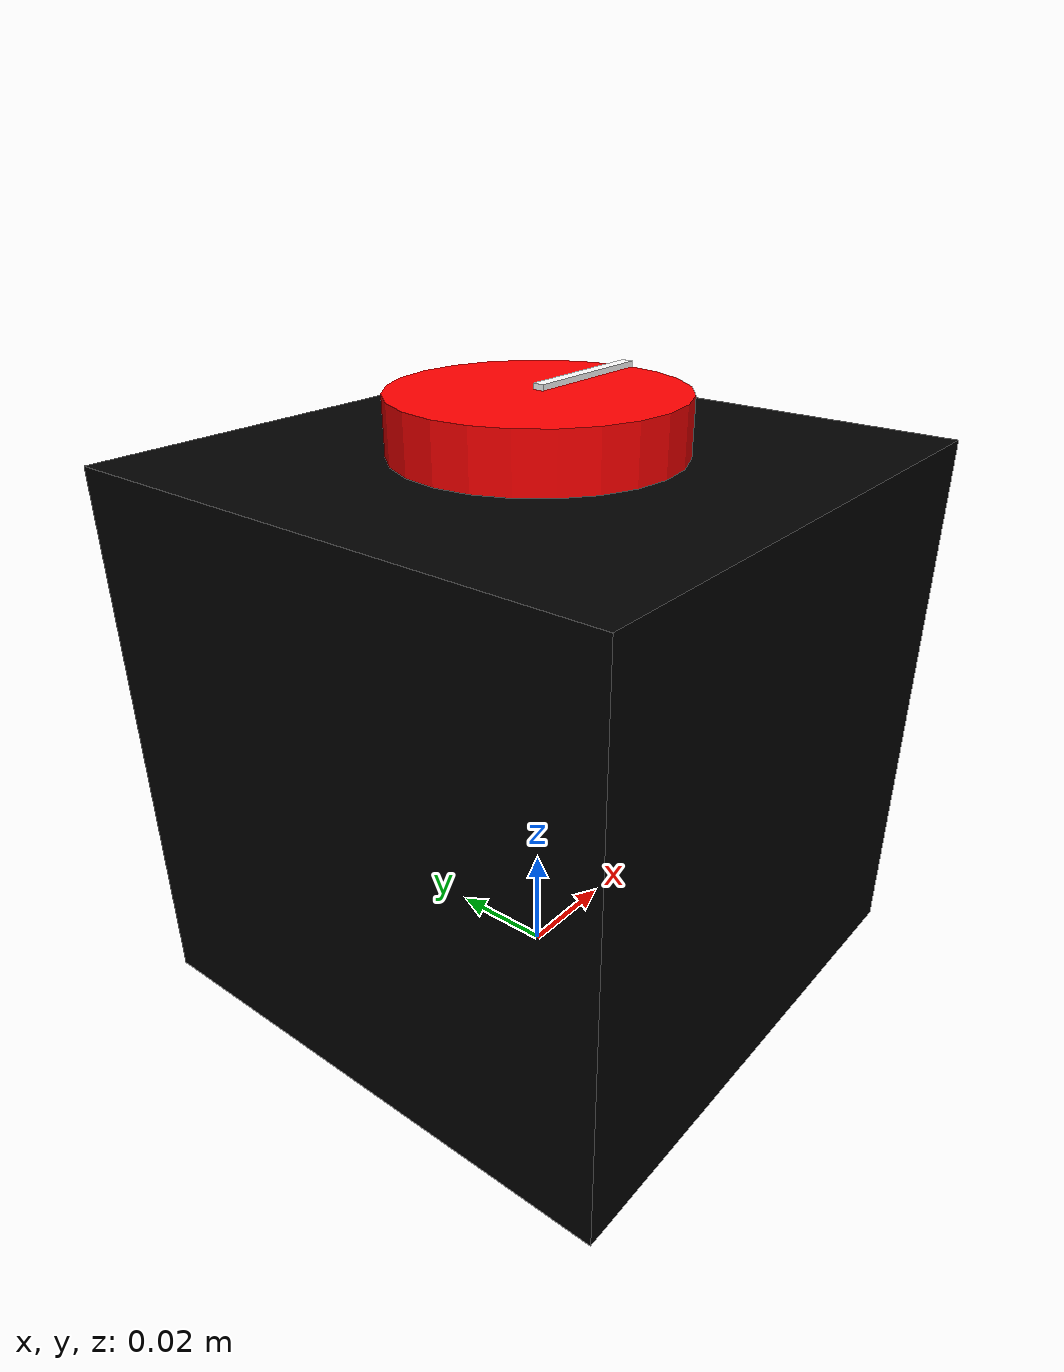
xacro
<?xml version="1.0"?>
<robot xmlns:xacro="http://www.ros.org/wiki/xacro" name="qube_robot">
	<xacro:include filename="$(find qube_description)/urdf/qube.macro.xacro"/>
    <xacro:include filename="$(find qube_driver)/ros2_control/qube_driver.ros2_control.xacro"/>

    <xacro:arg name="baud_rate" default="9600"/>
    <xacro:arg name="device" default="COM1"/>
    <xacro:arg name="simulation" default="false"/>

    <link name="world"/>

	<xacro:qube/>

    <joint name="base_joint" type="fixed">
        <parent link="world"/>
        <child link="base_link"/>
        <origin xyz="0 0 0" rpy="0 0 0"/>
    </joint>

    <xacro:qube_driver_ros2_control name="qube_driver" prefix="" baud_rate="$(arg baud_rate)" device="$(arg device)" simulation="$(arg simulation)"/>

</robot>

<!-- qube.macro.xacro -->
<robot xmlns:xacro="http://www.ros.org/wiki/xacro" >

  <!-- Definer materialer -->
  <material name="black">
    <color rgba="0 0 0 1"/>
  </material>

  <material name="red">
    <color rgba="1 0 0 1"/>
  </material>

  <material name="white">
    <color rgba="1 1 1 1"/>
  </material>

	<xacro:macro name="qube" params="stator_size:=0.102
  rotor_radius=0.025
  rotor_length=0.01
  angle_box_x=0.025
  angle_box_y:=0.002
  angle_box_z:=0.002">

    <!-- Links og joints -->
    <link name="base_link"/>

    <!-- Stator -->
    <link name="stator_link">
      <visual>
        <geometry>
          <box size="${stator_size} ${stator_size} ${stator_size}"/>
        </geometry>
        <material name="black"/>
      </visual>
    </link>

    <joint name="stator_joint" type="fixed">
      <parent link="base_link"/>
      <child link="stator_link"/>
      <origin xyz="0 0 ${stator_size/2}" rpy="0 0 0"/>
    </joint>

    <!-- Rotor -->
    <link name="rotor_link">
      <visual>
        <geometry>
          <cylinder radius="${rotor_radius}" length="${rotor_length}"/>
        </geometry>
        <material name="red"/>
      </visual>
    </link>

    <joint name="motor_joint" type="continuous">
      <parent link="stator_link"/>
      <child link="rotor_link"/>
      <origin xyz="0 0 ${stator_size/2 + rotor_length/2}" rpy="0 0 0"/>
      <axis xyz="0 0 -1"/>
    </joint>

    <!-- Vinkel-indikator -->
    <link name="angle_link">
      <visual>
        <geometry>
          <box size="${angle_box_x} ${angle_box_y} ${angle_box_z}"/>
        </geometry>
        <material name="white"/>
      </visual>
    </link>

    <joint name="indicator" type="fixed">
      <parent link="rotor_link"/>
      <child link="angle_link"/>
      <origin xyz="${angle_box_x/2} 0 ${rotor_length/2}" rpy="0 0 0"/>
    </joint>
	</xacro:macro>
</robot>
